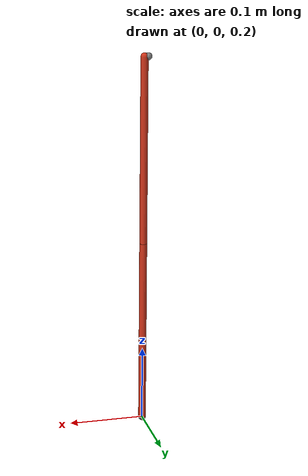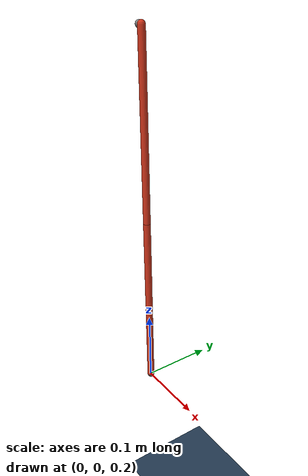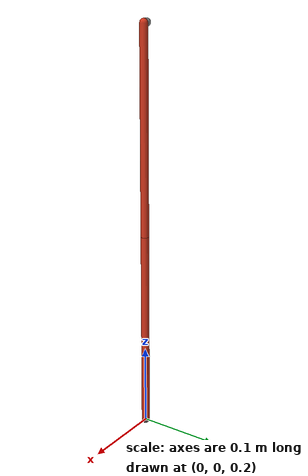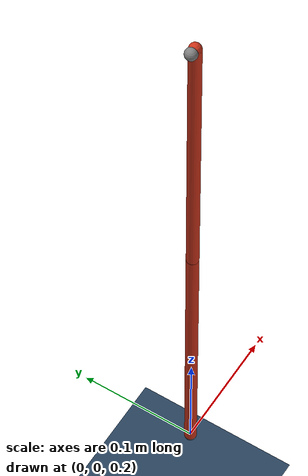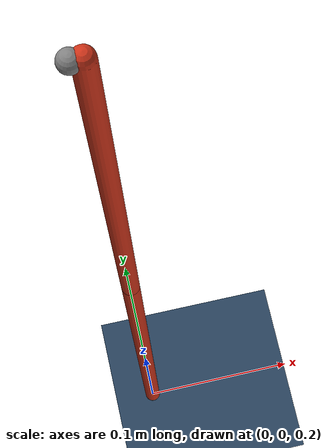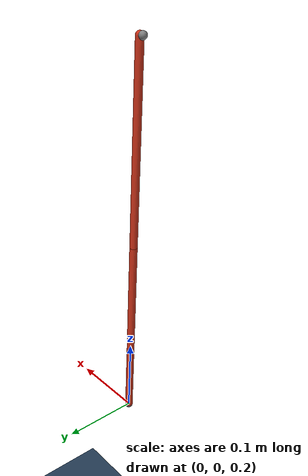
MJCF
<mujoco model="cable_trunk_model_example">
  <compiler angle="radian"/>

  <extension>
    <plugin plugin="mujoco.elasticity.cable"/>
  </extension>

  <custom>
    <text name="composite_actuated" data="rope_actuated"/>
  </custom>

  <asset>
    <texture type="2d" name="grid" builtin="checker" rgb1="0.1 0.2 0.3" rgb2="0.2 0.3 0.4" width="300" height="300"/>
    <material name="grid" texture="grid" texrepeat="8 8" reflectance="0.2"/>
  </asset>

  <worldbody>
    <camera name="yz_view" pos="0 -1.3 0.35" xyaxes="1 0 0 0 0 1"/>
    <geom size="10 10 0.01" type="plane" material="grid"/>
    <light pos="0 0 2" dir="0 0 -1"/>
    <site name="world_left" pos="-0.005 0 0.7"/>
    <body name="actuatedB_first" pos="0 0 0.7" quat="0 -0.707107 0 0.707107">
      <joint name="actuatedJ_0" pos="0 0 0" type="hinge" axis="0 1 0" group="3" stiffness="0.65" actuatorfrclimited="false" damping="0.032"/>
      <geom name="actuatedG0" size="0.005 0.125" pos="0.125 0 0" quat="0.707107 0 -0.707107 0" type="capsule" rgba="0.8 0.2 0.1 1"/>
      <site name="actuatedS_first" pos="0 0 0" group="3"/>
      <body name="actuatedB_1" pos="0.25 0 0">
        <joint name="actuatedJ_1" pos="0 0 0" type="hinge" axis="0 1 0" group="3" stiffness="0.65" actuatorfrclimited="false" damping="0.032"/>
        <geom name="actuatedG1" size="0.005 0.125" pos="0.125 0 0" quat="0.707107 0 -0.707107 0" type="capsule" rgba="0.8 0.2 0.1 1"/>
        <site name="endeffector" pos="0.25 0 0"/>
      </body>
    </body>
  </worldbody>

  <actuator>
    <motor name="actuator_0" joint="actuatedJ_0" gear="2"/>
    <motor name="actuator_1" joint="actuatedJ_1" gear="2"/>
  </actuator>

  <contact>
    <exclude body1="actuatedB_first" body2="actuatedB_1"/>
  </contact>

  <visual>
  <global offwidth="1920" offheight="1080"/>
  </visual>

</mujoco>
